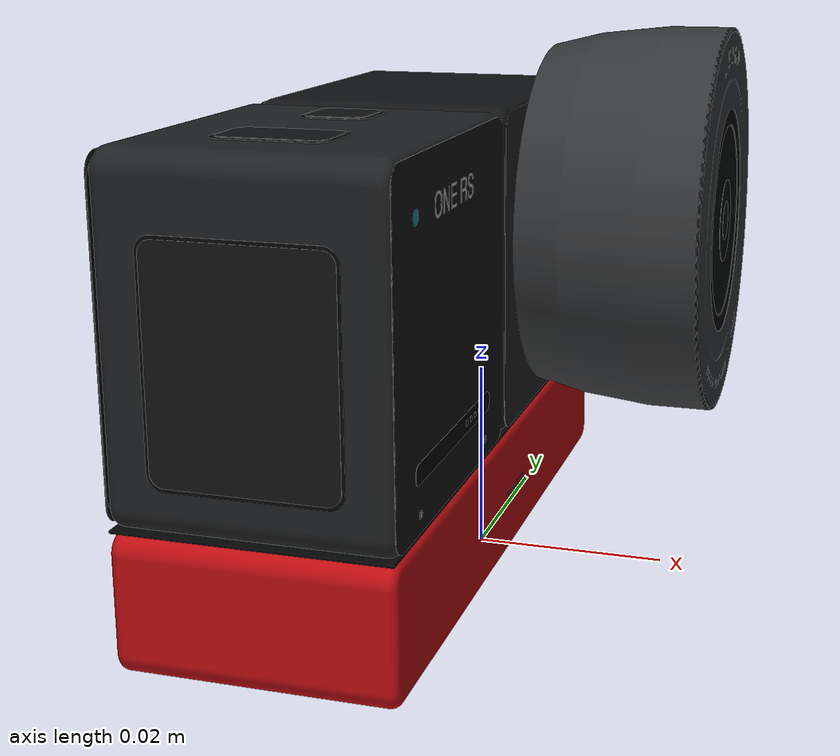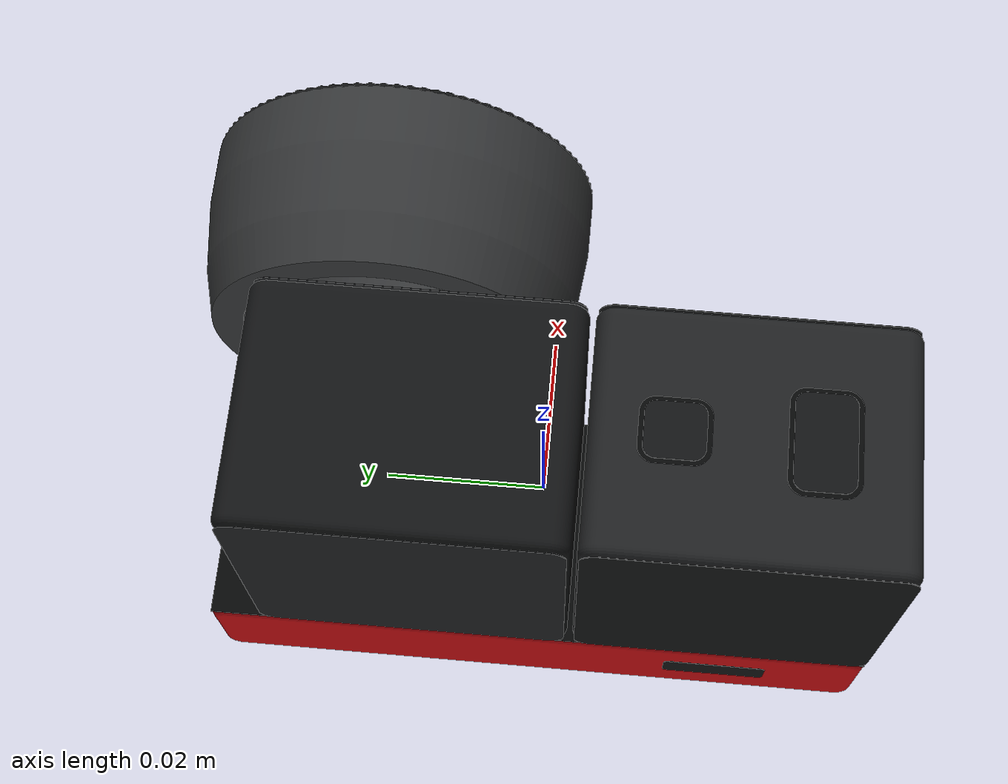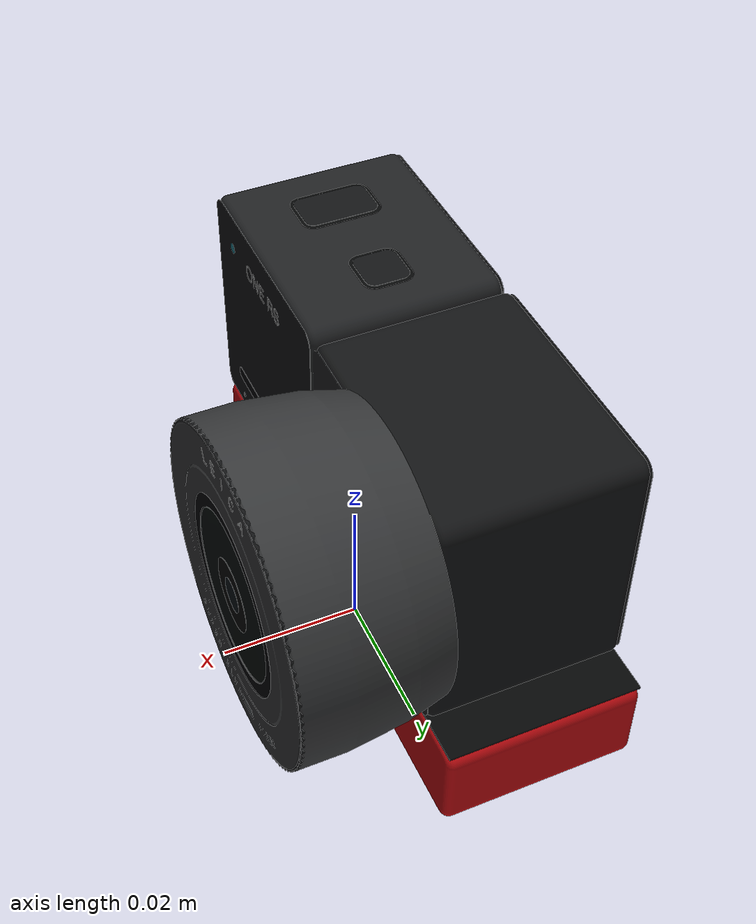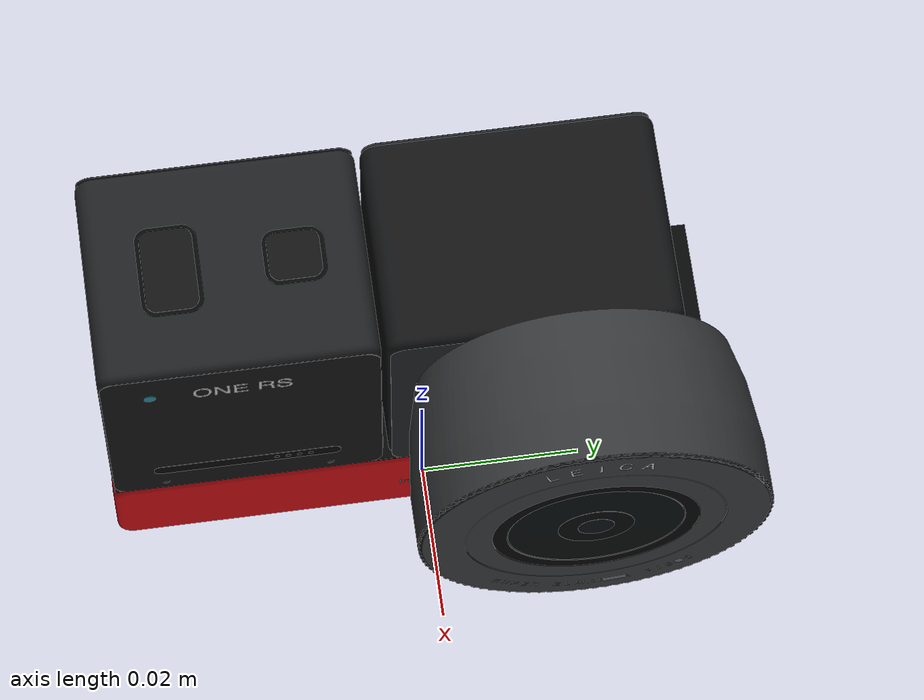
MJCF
<?xml version='1.0' encoding='utf-8'?>
<mujoco model="one_rs_1inch">
  <!--Independent approximate geometry; fixed sites are geometric references, not calibrated optical frames.-->
  <compiler angle="radian" inertiafromgeom="false" strippath="false" />
  <option timestep="0.002" gravity="0 0 -9.81" />
  <asset>
    <mesh name="one_rs_1inch_visual_mesh_0" file="../assets/meshes/visual/display_black.obj" scale="1 1 1" inertia="shell" />
    <mesh name="one_rs_1inch_visual_mesh_1" file="../assets/meshes/visual/housing.obj" scale="1 1 1" inertia="shell" />
    <mesh name="one_rs_1inch_visual_mesh_2" file="../assets/meshes/visual/lens_ring.obj" scale="1 1 1" inertia="shell" />
    <mesh name="one_rs_1inch_visual_mesh_3" file="../assets/meshes/visual/markings.obj" scale="1 1 1" inertia="shell" />
    <mesh name="one_rs_1inch_visual_mesh_4" file="../assets/meshes/visual/modular_battery.obj" scale="1 1 1" inertia="shell" />
    <mesh name="one_rs_1inch_visual_mesh_5" file="../assets/meshes/visual/muted_markings.obj" scale="1 1 1" inertia="shell" />
    <mesh name="one_rs_1inch_visual_mesh_6" file="../assets/meshes/visual/optical_glass.obj" scale="1 1 1" inertia="shell" />
    <mesh name="one_rs_1inch_visual_mesh_7" file="../assets/meshes/visual/optics_black.obj" scale="1 1 1" inertia="shell" />
    <mesh name="one_rs_1inch_visual_mesh_8" file="../assets/meshes/visual/optics_coating.obj" scale="1 1 1" inertia="shell" />
    <mesh name="one_rs_1inch_visual_mesh_9" file="../assets/meshes/visual/rubber.obj" scale="1 1 1" inertia="shell" />
    <mesh name="one_rs_1inch_visual_mesh_10" file="../assets/meshes/visual/screen.obj" scale="1 1 1" inertia="shell" />
    <mesh name="one_rs_1inch_visual_mesh_11" file="../assets/meshes/visual/screw_metal.obj" scale="1 1 1" inertia="shell" />
    <mesh name="one_rs_1inch_visual_mesh_12" file="../assets/meshes/visual/seam.obj" scale="1 1 1" inertia="shell" />
    <mesh name="one_rs_1inch_visual_mesh_13" file="../assets/meshes/visual/status.obj" scale="1 1 1" inertia="shell" />
    <mesh name="one_rs_1inch_collision_mesh_0" file="../assets/meshes/collision/body.stl" scale="1 1 1" inertia="convex" />
    <mesh name="one_rs_1inch_collision_mesh_1" file="../assets/meshes/collision/core.stl" scale="1 1 1" inertia="convex" />
    <mesh name="one_rs_1inch_collision_mesh_2" file="../assets/meshes/collision/front_lens.stl" scale="1 1 1" inertia="convex" />
    <mesh name="one_rs_1inch_collision_mesh_3" file="../assets/meshes/collision/lens_module.stl" scale="1 1 1" inertia="convex" />
  </asset>
  <worldbody>
    <body name="one_rs_1inch_link">
      <inertial pos="0 0 0.02785" mass="0.163" diaginertia="0.000126273111667 7.24036491667e-05 0.000114392449167" quat="1 0 0 0" />
      <geom name="one_rs_1inch_visual_0" type="mesh" mesh="one_rs_1inch_visual_mesh_0" pos="0 0 0" quat="1 0 0 0" density="0" group="2" contype="0" conaffinity="0" rgba="0.01 0.013 0.015 1" />
      <geom name="one_rs_1inch_visual_1" type="mesh" mesh="one_rs_1inch_visual_mesh_1" pos="0 0 0" quat="1 0 0 0" density="0" group="2" contype="0" conaffinity="0" rgba="0.12 0.125 0.13 1" />
      <geom name="one_rs_1inch_visual_2" type="mesh" mesh="one_rs_1inch_visual_mesh_2" pos="0 0 0" quat="1 0 0 0" density="0" group="2" contype="0" conaffinity="0" rgba="0.21 0.215 0.22 1" />
      <geom name="one_rs_1inch_visual_3" type="mesh" mesh="one_rs_1inch_visual_mesh_3" pos="0 0 0" quat="1 0 0 0" density="0" group="2" contype="0" conaffinity="0" rgba="0.72 0.73 0.73 1" />
      <geom name="one_rs_1inch_visual_4" type="mesh" mesh="one_rs_1inch_visual_mesh_4" pos="0 0 0" quat="1 0 0 0" density="0" group="2" contype="0" conaffinity="0" rgba="0.75 0.047 0.065 1" />
      <geom name="one_rs_1inch_visual_5" type="mesh" mesh="one_rs_1inch_visual_mesh_5" pos="0 0 0" quat="1 0 0 0" density="0" group="2" contype="0" conaffinity="0" rgba="0.36 0.38 0.39 1" />
      <geom name="one_rs_1inch_visual_6" type="mesh" mesh="one_rs_1inch_visual_mesh_6" pos="0 0 0" quat="1 0 0 0" density="0" group="2" contype="0" conaffinity="0" rgba="0.026 0.045 0.042 1" />
      <geom name="one_rs_1inch_visual_7" type="mesh" mesh="one_rs_1inch_visual_mesh_7" pos="0 0 0" quat="1 0 0 0" density="0" group="2" contype="0" conaffinity="0" rgba="0.022 0.025 0.026 1" />
      <geom name="one_rs_1inch_visual_8" type="mesh" mesh="one_rs_1inch_visual_mesh_8" pos="0 0 0" quat="1 0 0 0" density="0" group="2" contype="0" conaffinity="0" rgba="0.033 0.059 0.078 1" />
      <geom name="one_rs_1inch_visual_9" type="mesh" mesh="one_rs_1inch_visual_mesh_9" pos="0 0 0" quat="1 0 0 0" density="0" group="2" contype="0" conaffinity="0" rgba="0.068 0.072 0.076 1" />
      <geom name="one_rs_1inch_visual_10" type="mesh" mesh="one_rs_1inch_visual_mesh_10" pos="0 0 0" quat="1 0 0 0" density="0" group="2" contype="0" conaffinity="0" rgba="0.037 0.043 0.047 1" />
      <geom name="one_rs_1inch_visual_11" type="mesh" mesh="one_rs_1inch_visual_mesh_11" pos="0 0 0" quat="1 0 0 0" density="0" group="2" contype="0" conaffinity="0" rgba="0.19 0.2 0.21 1" />
      <geom name="one_rs_1inch_visual_12" type="mesh" mesh="one_rs_1inch_visual_mesh_12" pos="0 0 0" quat="1 0 0 0" density="0" group="2" contype="0" conaffinity="0" rgba="0.018 0.02 0.022 1" />
      <geom name="one_rs_1inch_visual_13" type="mesh" mesh="one_rs_1inch_visual_mesh_13" pos="0 0 0" quat="1 0 0 0" density="0" group="2" contype="0" conaffinity="0" rgba="0.13 0.5 0.57 1" />
      <geom name="one_rs_1inch_collision_0" type="mesh" mesh="one_rs_1inch_collision_mesh_0" pos="0 0 0" quat="1 0 0 0" density="0" group="3" contype="1" conaffinity="1" rgba="0 0 0 0" />
      <geom name="one_rs_1inch_collision_1" type="mesh" mesh="one_rs_1inch_collision_mesh_1" pos="0 0 0" quat="1 0 0 0" density="0" group="3" contype="1" conaffinity="1" rgba="0 0 0 0" />
      <geom name="one_rs_1inch_collision_2" type="mesh" mesh="one_rs_1inch_collision_mesh_2" pos="0 0 0" quat="1 0 0 0" density="0" group="3" contype="1" conaffinity="1" rgba="0 0 0 0" />
      <geom name="one_rs_1inch_collision_3" type="mesh" mesh="one_rs_1inch_collision_mesh_3" pos="0 0 0" quat="1 0 0 0" density="0" group="3" contype="1" conaffinity="1" rgba="0 0 0 0" />
      <site name="one_rs_1inch_mount" pos="0 0 0" quat="1 0 0 0" type="sphere" size="0.001" group="4" rgba="0 0 0 0" />
      <site name="one_rs_1inch_front_lens_surface" pos="0.0236 0.01785 0.0342" quat="0.500000000002 -0.5 0.499999999998 -0.5" type="sphere" size="0.001" group="4" rgba="0 0 0 0" />
    </body>
  </worldbody>
</mujoco>
